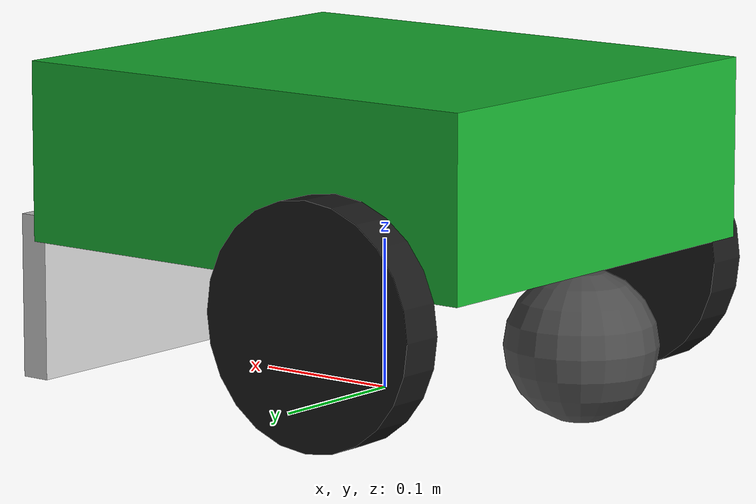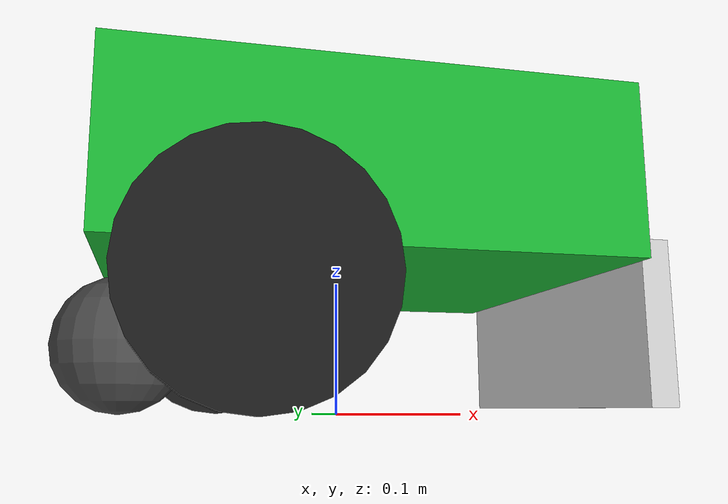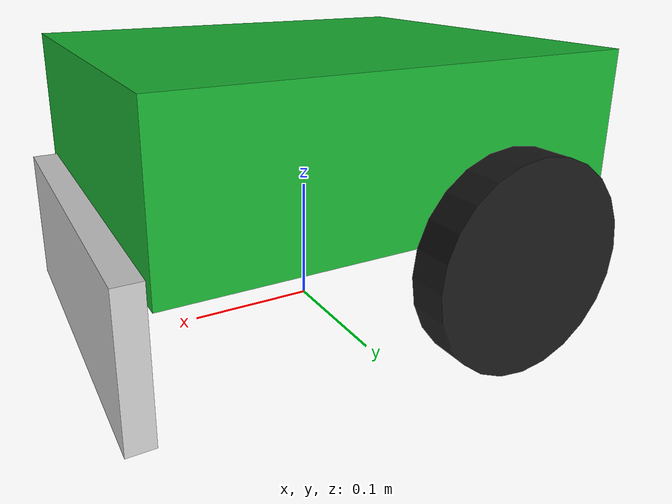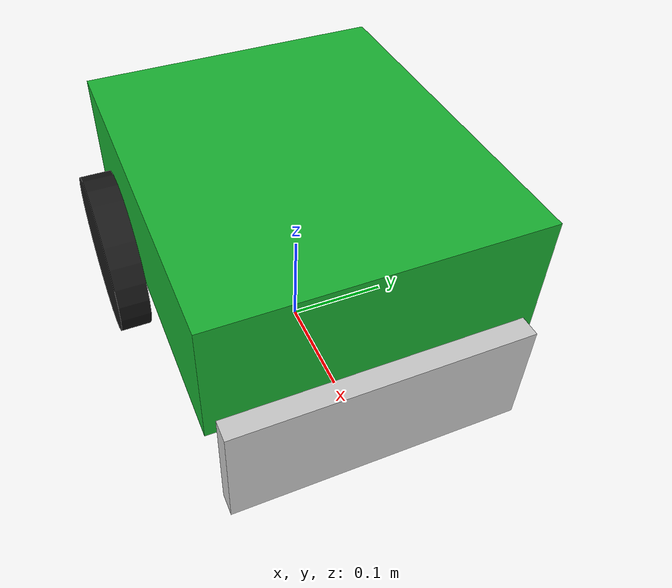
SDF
<?xml version="1.0"?>
<sdf version="1.10">
  <model name="diff_drive">
    <static>false</static>
    <pose>0 0 0 0 0 0</pose>

    <!-- ================== CHASSIS =================== -->
    <!-- Base: L=0.35m x W=0.30m x H=0.12m, mass=0.3 kg -->
    <link name="chassis">
      <pose>0 0 0.16 0 0 0</pose>
      <inertial>
        <mass>4.5</mass>
        <!-- Box inertia: Ixx=(1/12)m(y^2+z^2), etc. -->
        <inertia>
          <ixx>0.03915</ixx>
          <iyy>0.0513375</iyy>
          <izz>0.0796875</izz>
          <ixy>0</ixy><ixz>0</ixz><iyz>0</iyz>
        </inertia>
      </inertial>

      <collision name="chassis_col">
        <geometry><box><size>0.35 0.30 0.12</size></box></geometry>
        <surface>
            <friction><ode><mu>0.6</mu><mu2>0.6</mu2></ode></friction>
        </surface>
      </collision>

      <visual name="chassis_vis">
        <geometry><box><size>0.35 0.30 0.12</size></box></geometry>
        <material>
            <ambient>0.05 0.35 0.10 1</ambient>
            <diffuse>0.10 0.70 0.20 1</diffuse>
        </material>
      </visual>

      <!-- IMU mounted near the chassis -->
      <sensor name="imu" type="imu">
        <always_on>true</always_on>
        <update_rate>100</update_rate>
        <visualize>false</visualize>
        <topic>imu</topic>
      </sensor>
    </link>

    <!-- ================== LEFT WHEEL =================== -->
    <link name="left_wheel">
        <pose>-0.08 0.165 0.08 1.57079632679 0 0</pose>
        <inertial>
            <mass>0.3</mass>
            <!-- Solid cylinder (axis=Y): Iyy=0.5*m*r^2; Ixx=Izz=(1/12)*m*(3r^2+L^2) -->
            <inertia>
                <ixx>0.0005025</ixx>
                <iyy>0.00096</iyy>
                <izz>0.0005025</izz>
                <ixy>0</ixy><ixz>0</ixz><iyz>0</iyz>
            </inertia>
        </inertial>

        <collision name="wheel_col">
            <geometry><cylinder><radius>0.08</radius><length>0.03</length></cylinder></geometry>
            <surface><friction><ode><mu>1.2</mu><mu2>1.2</mu2></ode></friction></surface>
        </collision>
        <visual name="wheel_vis">
            <geometry><cylinder><radius>0.08</radius><length>0.03</length></cylinder></geometry>
            <material><ambient>0.2 0.2 0.2 1</ambient><diffuse>0.1 0.1 0.1 1</diffuse></material>
        </visual>
    </link>

    <!-- ================== RIGHT WHEEL =================== -->
    <link name="right_wheel">
        <pose>-0.08 -0.165 0.08 1.57079632679 0 0</pose>
        <inertial>
            <mass>0.3</mass>
            <inertia>
            <ixx>0.0005025</ixx>
            <iyy>0.00096</iyy>
            <izz>0.0005025</izz>
            <ixy>0</ixy><ixz>0</ixz><iyz>0</iyz>
            </inertia>
        </inertial>

        <collision name="wheel_col">
            <geometry><cylinder><radius>0.08</radius><length>0.03</length></cylinder></geometry>
            <surface><friction><ode><mu>1.2</mu><mu2>1.2</mu2></ode></friction></surface>
        </collision>
        <visual name="wheel_vis">
            <geometry><cylinder><radius>0.08</radius><length>0.03</length></cylinder></geometry>
            <material><ambient>0.2 0.2 0.2 1</ambient><diffuse>0.1 0.1 0.1 1</diffuse></material>
        </visual>
    </link>

    <!-- ================== CASTER =================== -->
    <link name="caster">
        <pose>-0.16 0 0.05 0 0 0</pose>
        <inertial>
            <mass>0.2</mass>
            <!-- Solid sphere: I = (2/5) m r^2 -->
            <inertia>
                <ixx>0.000072</ixx>
                <iyy>0.000072</iyy>
                <izz>0.000072</izz>
                <ixy>0</ixy><ixz>0</ixz><iyz>0</iyz>
            </inertia>
      </inertial>
      <collision name="caster_col">
        <geometry><sphere><radius>0.05</radius></sphere></geometry>
        <surface>
        <contact><ode><kp>2e6</kp><kd>1</kd></ode></contact>
        <friction><ode><mu>0.1</mu><mu2>0.1</mu2></ode></friction>
        </surface>
      </collision>
      <visual name="caster_vis">
        <geometry><sphere><radius>0.05</radius></sphere></geometry>
        <material><ambient>0.2 0.2 0.2 1</ambient><diffuse>0.3 0.3 0.3 1</diffuse></material>
      </visual>
    </link>

    <!-- ================== PUSHER =================== -->
    <!-- Thickness 0.02m, width 0.28m, height 0.11m, mass 0.5kg -->
    <link name="pusher">
        <pose>0.185 0 0.06 0 0 0</pose>
        <inertial>
            <mass>0.5</mass>
            <inertia>
                <ixx>0.0037708333333333335</ixx>
                <iyy>0.0005208333333333332</iyy>
                <izz>0.0032833333333333334</izz>
                <ixy>0</ixy><ixz>0</ixz><iyz>0</iyz>
            </inertia>
        </inertial>
        <collision name="pusher_col">
            <geometry><box><size>0.02 0.28 0.11</size></box></geometry>
            <surface><friction><ode><mu>0.9</mu><mu2>0.9</mu2></ode></friction></surface>
        </collision>
        <visual name="pusher_vis">
            <geometry><box><size>0.02 0.28 0.11</size></box></geometry>
            <material><ambient>0.25 0.25 0.25 1</ambient><diffuse>0.8 0.8 0.8 1</diffuse></material>
        </visual>

        <!-- Contact sensor to know when we push -->
        <sensor name="pusher_contact" type="contact">
            <always_on>true</always_on>
            <update_rate>100</update_rate>
            <contact><collision>pusher_col</collision></contact>
            <visualize>false</visualize>
            <topic>/model/diff_drive/pusher_contact</topic>
        </sensor>
    </link>

    <!-- ================== JOINTS =================== -->
    <joint name="left_wheel_joint" type="revolute">
        <parent>chassis</parent>
        <child>left_wheel</child>
        <axis>
            <xyz>0 1 0</xyz>
            <limit><lower>-1e16</lower><upper>1e16</upper></limit>
            <dynamics><damping>0.05</damping></dynamics>
        </axis>
    </joint>

    <joint name="right_wheel_joint" type="revolute">
        <parent>chassis</parent>
        <child>right_wheel</child>
        <axis>
            <xyz>0 1 0</xyz>
            <limit><lower>-1e16</lower><upper>1e16</upper></limit>
            <dynamics><damping>0.05</damping></dynamics>
        </axis>
    </joint>

    <joint name="caster_joint" type="ball">
        <parent>chassis</parent>
        <child>caster</child>
        <pose>-0.16 0 0.05 0 0 0</pose>
    </joint>

    <joint name="pusher_fixed" type="fixed">
        <parent>chassis</parent>
        <child>pusher</child>
    </joint>

    <!-- Differential drive controller (cmd_vel -> wheel speeds; odometry out) -->
    <plugin filename="gz-sim-diff-drive-system" name="gz::sim::systems::DiffDrive">
      <left_joints>left_wheel_joint</left_joints>
      <right_joints>right_wheel_joint</right_joints>
      <wheel_separation>0.33</wheel_separation>
      <wheel_radius>0.08</wheel_radius>
      <odom_frame>odom</odom_frame>
      <topic>cmd_vel</topic>
      <odom_topic>odometry</odom_topic>
      <max_torque>6.0</max_torque>
    </plugin>

    <!-- Publish joint states (wheel encoders proxy) -->
    <plugin filename="gz-sim-joint-state-publisher-system"
        name="gz::sim::systems::JointStatePublisher">
    </plugin>

    <plugin filename="gz-sim-pose-publisher-system" name="gz::sim::systems::PosePublisher">
      <publish_model_pose>true</publish_model_pose>
      <publish_link_pose>false</publish_link_pose>
      <update_frequency>30</update_frequency>
    </plugin>

  </model>
</sdf>
